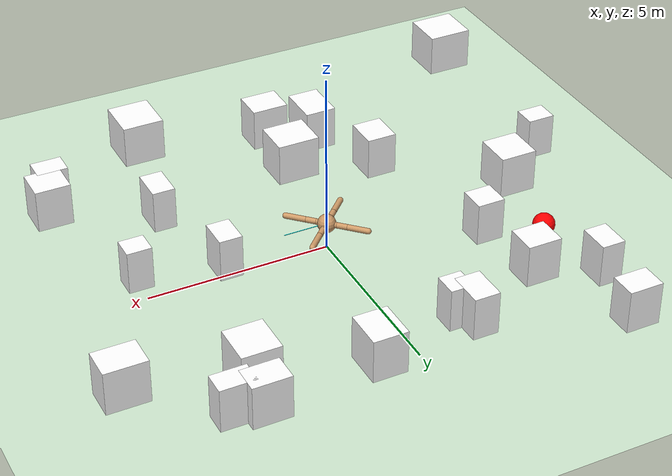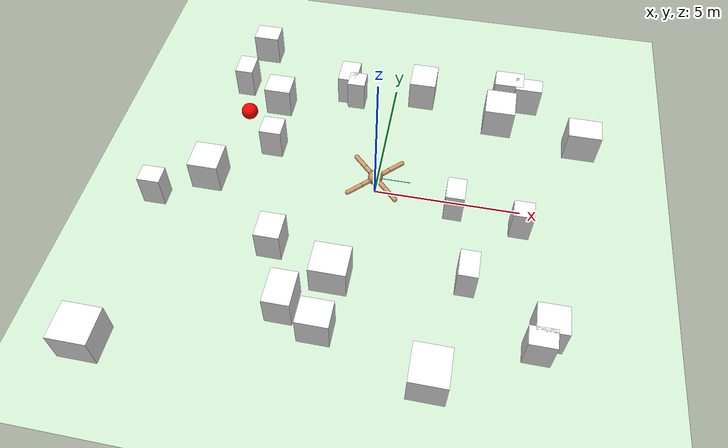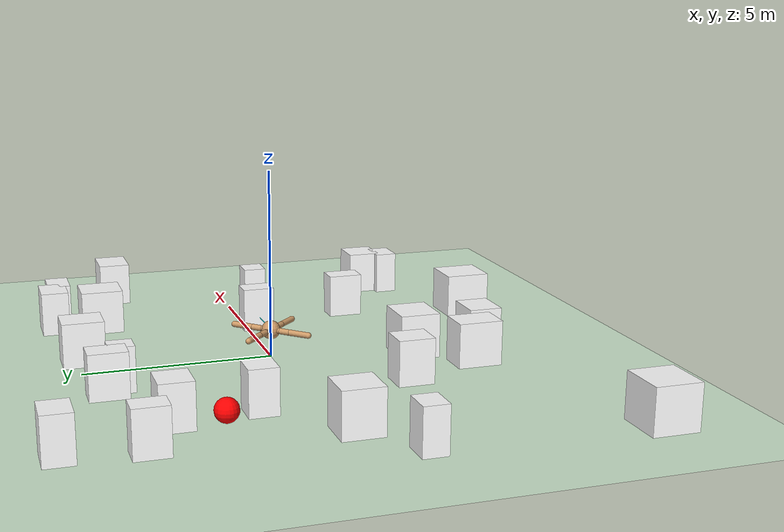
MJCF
<mujoco model="ant">
  <compiler angle="radian" coordinate="local" inertiafromgeom="true"/>
  <option integrator="RK4" timestep="0.01"/>
    <size nconmax="500"/>
  <custom>
    <numeric data="0.0 0.0 0.55 1.0 0.0 0.0 0.0 0.0 1.0 0.0 -1.0 0.0 -1.0 0.0 1.0" name="init_qpos"/>
  </custom>
  <default>
    <joint armature="1" damping="1" limited="true"/>
    <geom conaffinity="0" condim="3" density="5.0" friction="1 0.5 0.5" margin="0.01" rgba="0.8 0.6 0.4 1"/>
  </default>
  <asset>
    <texture builtin="gradient" height="100" rgb1="1 1 1" rgb2="0 0 0" type="skybox" width="100"/>
    <texture builtin="flat" height="1278" mark="cross" markrgb="1 1 1" name="texgeom" random="0.01" rgb1="0.8 0.6 0.4" rgb2="0.8 0.6 0.4" type="cube" width="127"/>
    <texture builtin="checker" height="100" name="texplane" rgb1="0 0 0" rgb2="0.8 0.8 0.8" type="2d" width="100"/>
    <material name="MatPlane" reflectance="0.2" shininess="1" specular="1" texrepeat="0 0" texture="texplane"/>
    <material name="geom" texture="texgeom" texuniform="true"/>
  </asset>

  <worldbody>
    <light cutoff="100" diffuse="1 1 1" dir="-0 0 -1.3" directional="true" exponent="1" pos="0 0 1.3" specular=".1 .1 .1"/>
    <geom conaffinity="1" condim="3" material="MatPlane" name="floor" pos="0 0 0" rgba="0.8 0.9 0.8 1" size="10 10 1" type="plane"/>

    <body name="torso" pos="0 0 0.75">
      <camera name="track" mode="trackcom" pos="0 -3 0.3" xyaxes="1 0 0 0 0 1"/>
      <geom name="torso_geom" pos="0 0 0" size="0.25" mass="0.1" type="sphere"/>
      <joint armature="0" damping="0" limited="false" margin="0.01" name="root" pos="0 0 0" type="free"/>

      <body name="front_left_leg" pos="0 0 0">
        <geom fromto="0.0 0.0 0.0 0.2 0.2 0.0" name="aux_1_geom" size="0.08" type="capsule"/>
        <body name="aux_1" pos="0.2 0.2 0">
          <joint axis="0 0 1" name="hip_1" pos="0.0 0.0 0.0" range="-0.7 0.7" type="hinge"/>
          <geom fromto="0.0 0.0 0.0 0.2 0.2 0.0" name="left_leg_geom" size="0.08" type="capsule"/>
          <body pos="0.2 0.2 0">
            <joint axis="-1 1 0" name="ankle_1" pos="0.0 0.0 0.0" range="0.8 1.4" type="hinge"/>
            <geom fromto="0.0 0.0 0.0 0.4 0.4 0.0" name="left_ankle_geom" size="0.08" type="capsule"/>
          </body>
        </body>
      </body>

      <body name="front_right_leg" pos="0 0 0">
        <geom fromto="0.0 0.0 0.0 -0.2 0.2 0.0" name="aux_2_geom" size="0.08" type="capsule"/>
        <body name="aux_2" pos="-0.2 0.2 0">
          <joint axis="0 0 1" name="hip_2" pos="0.0 0.0 0.0" range="-0.7 0.7" type="hinge"/>
          <geom fromto="0.0 0.0 0.0 -0.2 0.2 0.0" name="right_leg_geom" size="0.08" type="capsule"/>
          <body pos="-0.2 0.2 0">
            <joint axis="1 1 0" name="ankle_2" pos="0.0 0.0 0.0" range="-1.4 -0.8" type="hinge"/>
            <geom fromto="0.0 0.0 0.0 -0.4 0.4 0.0" name="right_ankle_geom" size="0.08" type="capsule"/>
          </body>
        </body>
      </body>

      <body name="back_leg" pos="0 0 0">
        <geom fromto="0.0 0.0 0.0 -0.2 -0.2 0.0" name="aux_3_geom" size="0.08" type="capsule"/>
        <body name="aux_3" pos="-0.2 -0.2 0">
          <joint axis="0 0 1" name="hip_3" pos="0.0 0.0 0.0" range="-0.7 0.7" type="hinge"/>
          <geom fromto="0.0 0.0 0.0 -0.2 -0.2 0.0" name="back_leg_geom" size="0.08" type="capsule"/>
          <body pos="-0.2 -0.2 0">
            <joint axis="-1 1 0" name="ankle_3" pos="0.0 0.0 0.0" range="-1.4 -0.8" type="hinge"/>
            <geom fromto="0.0 0.0 0.0 -0.4 -0.4 0.0" name="third_ankle_geom" size="0.08" type="capsule"/>
          </body>
        </body>
      </body>

      <body name="right_back_leg" pos="0 0 0">
        <geom fromto="0.0 0.0 0.0 0.2 -0.2 0.0" name="aux_4_geom" size="0.08" type="capsule"/>
        <body name="aux_4" pos="0.2 -0.2 0">
          <joint axis="0 0 1" name="hip_4" pos="0.0 0.0 0.0" range="-0.7 0.7" type="hinge"/>
          <geom fromto="0.0 0.0 0.0 0.2 -0.2 0.0" name="rightback_leg_geom" size="0.08" type="capsule"/>
          <body pos="0.2 -0.2 0">
            <joint axis="1 1 0" name="ankle_4" pos="0.0 0.0 0.0" range="0.8 1.4" type="hinge"/>
            <geom fromto="0.0 0.0 0.0 0.4 -0.4 0.0" name="fourth_ankle_geom" size="0.08" type="capsule"/>
          </body>
        </body>
      </body>

      <body name="left_feeler" pos="0 0 0">
        <joint axis="0 0 1" name="lf1" pos="0.0 0.0 0.0" range="0.08 0.3" type="hinge"/>
        <geom fromto="0.2 0.0 0.0 0.6 0.0 0.0" name="lf1_geom" size="0.01" density="1" type="capsule" rgba="0 1 1 1"/>
        <body pos="0.6 0.0 0">
          <joint axis="0 1 0" name="lf2" pos="0.0 0.0 0.0" range="-0.65 0.3" type="hinge"/>
          <geom fromto="0.0 0.0 0.0 0.6 0.0 0.0" name="lf2_geom" size="0.01" density="1" type="capsule" rgba="0 1 1 1"/>
        </body>
      </body>

      <body name="right_feeler" pos="0 0 0">
        <joint axis="0 0 1" name="rf1" pos="0.0 0.0 0.0" range="-0.3 -0.08" type="hinge"/>
        <geom fromto="0.2 0.0 0.0 0.6 0.0 0.0" name="rf1_geom" size="0.01" density="1" type="capsule" rgba="0 1 1 1"/>
        <body pos="0.6 0.0 0">
          <joint axis="0 1 0" name="rf2" pos="0.0 0.0 0.0" range="-0.65 0.3" type="hinge"/>
          <geom fromto="0.0 0.0 0.0 0.6 0.0 0.0" name="rf2_geom" size="0.01" density="1" type="capsule" rgba="0 1 1 1"/>
        </body>
      </body>

    </body>

<!-- DEFINE CUBES AND GOAL HERE -->
    <body>
        <geom conaffinity='1' condim='3' name='cube0_geom' pos='-7.497342141890503 -7.252606584508065 0.6' size='0.6323926026365088 0.6056955204147276 0.6' rgba='1 1 1 1' mass='70' type='box'/>
     </body>
    <body>
        <geom conaffinity='1' condim='3' name='cube1_geom' pos='-7.342167086724177 -1.6154841365700752 0.6' size='0.38398339865745157 0.3201263900851311 0.6' rgba='1 1 1 1' mass='70' type='box'/>
     </body>
    <body>
        <geom conaffinity='1' condim='3' name='cube2_geom' pos='-5.779967450707332 -0.48028626344234526 0.6' size='0.5211520702189377 0.5328812075167285 0.6' rgba='1 1 1 1' mass='70' type='box'/>
     </body>
    <body>
        <geom conaffinity='1' condim='3' name='cube3_geom' pos='-5.721378411803029 4.192539787773894 0.6' size='0.3265631477263575 0.4364618461108278 0.6' rgba='1 1 1 1' mass='70' type='box'/>
     </body>
    <body>
        <geom conaffinity='1' condim='3' name='cube4_geom' pos='-5.3952074904087155 6.140030489971744 0.6' size='0.46859183167323903 0.37050787323543893 0.6' rgba='1 1 1 1' mass='70' type='box'/>
     </body>
    <body>
        <geom conaffinity='1' condim='3' name='cube5_geom' pos='-2.0117962652178605 -4.978050511526412 0.6' size='0.43673859255524455 0.5933890001771127 0.6' rgba='1 1 1 1' mass='70' type='box'/>
     </body>
    <body>
        <geom conaffinity='1' condim='3' name='cube6_geom' pos='-2.901480997211811 -2.8795837040946566 0.6' size='0.417592093159722 0.47444288883783703 0.6' rgba='1 1 1 1' mass='70' type='box'/>
     </body>
    <body>
        <geom conaffinity='1' condim='3' name='cube7_geom' pos='-3.940709340734804 1.2931187911517457 0.6' size='0.38408157137894033 0.3785007020633816 0.6' rgba='1 1 1 1' mass='70' type='box'/>
     </body>
    <body>
        <geom conaffinity='1' condim='3' name='cube8_geom' pos='-4.216693341994672 3.394255474622385 0.6' size='0.472576511050933 0.4300335203400312 0.6' rgba='1 1 1 1' mass='70' type='box'/>
     </body>
    <body>
        <geom conaffinity='1' condim='3' name='cube9_geom' pos='-1.790643686310779 4.571295590938919 0.6' size='0.35155926384160174 0.5011696920100779 0.6' rgba='1 1 1 1' mass='70' type='box'/>
     </body>
    <body>
        <geom conaffinity='1' condim='3' name='cube10_geom' pos='-0.8172215458403631 -5.603029822439934 0.6' size='0.5150145784591423 0.44371921390694713 0.6' rgba='1 1 1 1' mass='70' type='box'/>
     </body>
    <body>
        <geom conaffinity='1' condim='3' name='cube11_geom' pos='-0.7573436799534541 -3.733886161658008 0.6' size='0.5975751494866322 0.5388633826493627 0.6' rgba='1 1 1 1' mass='70' type='box'/>
     </body>
    <body>
        <geom conaffinity='1' condim='3' name='cube12_geom' pos='-1.4177223639703662 4.189148944205902 0.6' size='0.3154632800475338 0.32936988383919774 0.6' rgba='1 1 1 1' mass='70' type='box'/>
     </body>
    <body>
        <geom conaffinity='1' condim='3' name='cube13_geom' pos='1.0121178350877824 4.849846570173469 0.6' size='0.47099599242218443 0.5497842408679341 0.6' rgba='1 1 1 1' mass='70' type='box'/>
     </body>
    <body>
        <geom conaffinity='1' condim='3' name='cube14_geom' pos='2.697534875720402 -6.569151399048306 0.6' size='0.5803784290855759 0.622492545094342 0.6' rgba='1 1 1 1' mass='70' type='box'/>
     </body>
    <body>
        <geom conaffinity='1' condim='3' name='cube15_geom' pos='3.4415264957083016 -3.096620227334506 0.6' size='0.3122985888643616 0.47229377258979105 0.6' rgba='1 1 1 1' mass='70' type='box'/>
     </body>
    <body>
        <geom conaffinity='1' condim='3' name='cube16_geom' pos='2.7526120566390837 -0.2910034984550882 0.6' size='0.3155742820179417 0.4311555302164328 0.6' rgba='1 1 1 1' mass='70' type='box'/>
     </body>
    <body>
        <geom conaffinity='1' condim='3' name='cube17_geom' pos='3.931288400270784 3.9873145027313885 0.6' size='0.5305449673203944 0.5700082187853488 0.6' rgba='1 1 1 1' mass='70' type='box'/>
     </body>
    <body>
        <geom conaffinity='1' condim='3' name='cube18_geom' pos='4.172223277473416 5.267552460000983 0.6' size='0.5176017866253767 0.3699424853622869 0.6' rgba='1 1 1 1' mass='70' type='box'/>
     </body>
    <body>
        <geom conaffinity='1' condim='3' name='cube19_geom' pos='5.723319896776345 -5.13595557358721 0.6' size='0.4253788703490278 0.3101292599194765 0.6' rgba='1 1 1 1' mass='70' type='box'/>
     </body>
    <body>
        <geom conaffinity='1' condim='3' name='cube20_geom' pos='5.99668191268407 -4.487398167371477 0.6' size='0.48682135133520815 0.46478647649554616 0.6' rgba='1 1 1 1' mass='70' type='box'/>
     </body>
    <body>
        <geom conaffinity='1' condim='3' name='cube21_geom' pos='4.992412990766597 -0.7283240952761787 0.6' size='0.33808547913805587 0.31272627277207926 0.6' rgba='1 1 1 1' mass='70' type='box'/>
     </body>
    <body>
        <geom conaffinity='1' condim='3' name='cube22_geom' pos='6.92942732646857 3.2354048815462555 0.6' size='0.5722721014691523 0.4357147843537517 0.6' rgba='1 1 1 1' mass='70' type='box'/>
     </body>
    <body>
        <geom conaffinity='1' condim='3' name='cube23_geom' pos='4.896352512862935 5.076272032498073 0.6' size='0.4823194033946799 0.3102225584690948 0.6' rgba='1 1 1 1' mass='70' type='box'/>
     </body>
    <body>
        <geom conaffinity='1' condim='3' name='goal_geom' pos='-5.132181680172529 2.36133959709699 0.6' size='0.3' rgba='1 0 0 1' mass='1' type='sphere'/>
     </body>

  </worldbody>

  <actuator>
    <position joint="hip_4" kp="20"/>
    <position joint="ankle_4" kp="20"/>
    <position joint="hip_1" kp="20"/>
    <position joint="ankle_1" kp="20"/>
    <position joint="hip_2" kp="20"/>
    <position joint="ankle_2" kp="20"/>
    <position joint="hip_3" kp="20"/>
    <position joint="ankle_3" kp="20"/>
    <motor ctrllimited="true" ctrlrange="-1.0 1.0" joint="lf1" gear="20"/>
    <motor ctrllimited="true" ctrlrange="-1.0 1.0" joint="lf2" gear="20"/>
    <motor ctrllimited="true" ctrlrange="-1.0 1.0" joint="rf1" gear="20"/>
    <motor ctrllimited="true" ctrlrange="-1.0 1.0" joint="rf2" gear="20"/>
  </actuator>
</mujoco>
